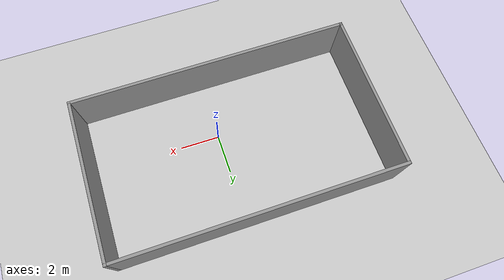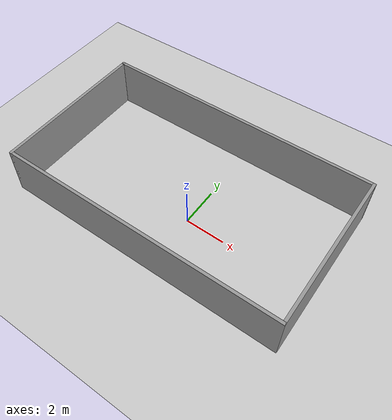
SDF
<sdf version="1.6">
 <world name="default">
  <plugin name="ros_interface_plugin" filename="librotors_gazebo_ros_interface_plugin.so"/>
  <spherical_coordinates>
   <surface_model>EARTH_WGS84</surface_model>
   <latitude_deg>47.3667</latitude_deg>
   <longitude_deg>8.5500</longitude_deg>
   <elevation>500.0</elevation>
   <heading_deg>0</heading_deg>
  </spherical_coordinates>
  <physics type="ode">
   <ode>
    <solver><type>quick</type><iters>1000</iters><sor>1.3</sor></solver>
    <constraints>
     <cfm>0</cfm>
     <erp>0.2</erp>
     <contact_max_correcting_vel>100</contact_max_correcting_vel>
     <contact_surface_layer>0.001</contact_surface_layer>
    </constraints>
   </ode>
   <max_step_size>0.01</max_step_size>
   <real_time_factor>1</real_time_factor>
   <real_time_update_rate>100</real_time_update_rate>
   <gravity>0 0 -9.81</gravity>
  </physics>
  <include><uri>model://sun</uri></include>
  <include><uri>model://ground_plane</uri></include>
  <include><uri>model://walls</uri></include>
 </world>
</sdf>

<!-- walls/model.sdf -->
<sdf version='1.6'>
  <model name='walls'>
    <pose frame=''>-0.6 0.925 0 0 -0 0</pose>
    <link name='Wall_5'>
      <collision name='Wall_5_Collision'>
        <geometry>
          <box>
            <size>14.25 0.15 2.5</size>
          </box>
        </geometry>
        <pose frame=''>0 0 1.25 0 -0 0</pose>
      </collision>
      <visual name='Wall_5_Visual'>
        <pose frame=''>0 0 1.25 0 -0 0</pose>
        <geometry>
          <box>
            <size>14.25 0.15 2.5</size>
          </box>
        </geometry>
        <material>
          <script>
            <uri>file://media/materials/scripts/gazebo.material</uri>
            <name>Gazebo/Grey</name>
          </script>
          <ambient>1 1 1 1</ambient>
        </material>
        <meta>
          <layer>0</layer>
        </meta>
      </visual>
      <pose frame=''>0 -3.925 0 0 -0 0</pose>
    </link>
    <link name='Wall_6'>
      <collision name='Wall_6_Collision'>
        <geometry>
          <box>
            <size>8 0.15 2.5</size>
          </box>
        </geometry>
        <pose frame=''>0 0 1.25 0 -0 0</pose>
      </collision>
      <visual name='Wall_6_Visual'>
        <pose frame=''>0 0 1.25 0 -0 0</pose>
        <geometry>
          <box>
            <size>8 0.15 2.5</size>
          </box>
        </geometry>
        <material>
          <script>
            <uri>file://media/materials/scripts/gazebo.material</uri>
            <name>Gazebo/Grey</name>
          </script>
          <ambient>1 1 1 1</ambient>
        </material>
        <meta>
          <layer>0</layer>
        </meta>
      </visual>
      <pose frame=''>7.05 -0 0 0 -0 1.5708</pose>
    </link>
    <link name='Wall_7'>
      <collision name='Wall_7_Collision'>
        <geometry>
          <box>
            <size>14.25 0.15 2.5</size>
          </box>
        </geometry>
        <pose frame=''>0 0 1.25 0 -0 0</pose>
      </collision>
      <visual name='Wall_7_Visual'>
        <pose frame=''>0 0 1.25 0 -0 0</pose>
        <geometry>
          <box>
            <size>14.25 0.15 2.5</size>
          </box>
        </geometry>
        <material>
          <script>
            <uri>file://media/materials/scripts/gazebo.material</uri>
            <name>Gazebo/Grey</name>
          </script>
          <ambient>1 1 1 1</ambient>
        </material>
        <meta>
          <layer>0</layer>
        </meta>
      </visual>
      <pose frame=''>0 3.925 0 0 -0 3.14159</pose>
    </link>
    <link name='Wall_8'>
      <collision name='Wall_8_Collision'>
        <geometry>
          <box>
            <size>8 0.15 2.5</size>
          </box>
        </geometry>
        <pose frame=''>0 0 1.25 0 -0 0</pose>
      </collision>
      <visual name='Wall_8_Visual'>
        <pose frame=''>0 0 1.25 0 -0 0</pose>
        <geometry>
          <box>
            <size>8 0.15 2.5</size>
          </box>
        </geometry>
        <material>
          <script>
            <uri>file://media/materials/scripts/gazebo.material</uri>
            <name>Gazebo/Grey</name>
          </script>
          <ambient>1 1 1 1</ambient>
        </material>
        <meta>
          <layer>0</layer>
        </meta>
      </visual>
      <pose frame=''>-7.05 -0 0 0 -0 -1.5708</pose>
    </link>
    <static>1</static>
  </model>
</sdf>
